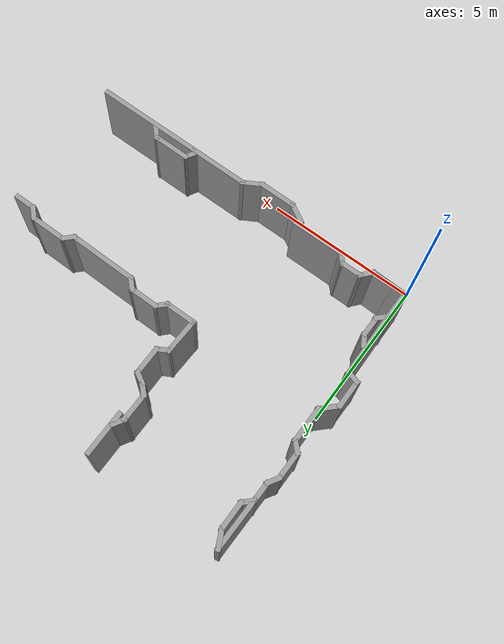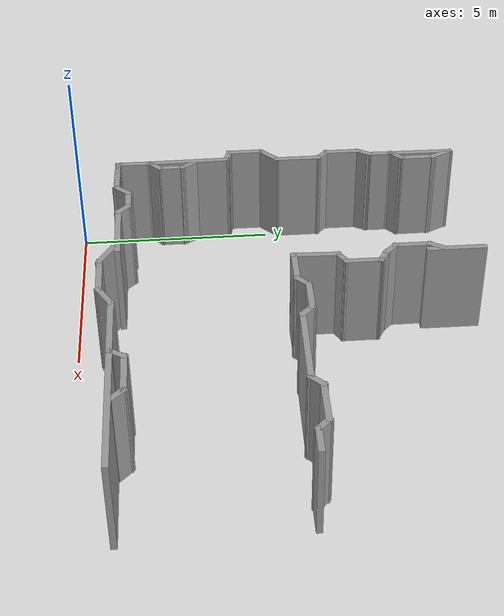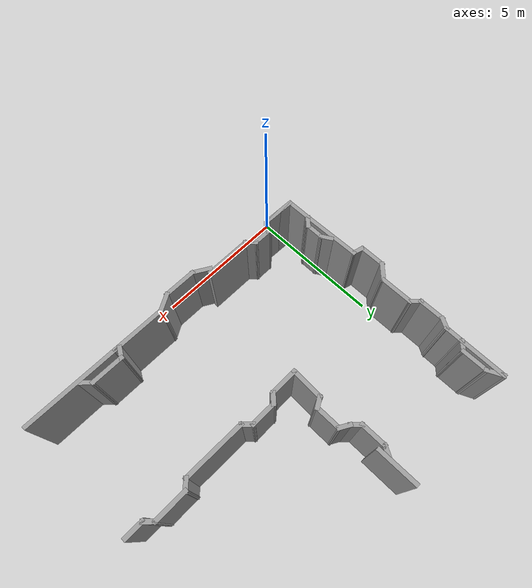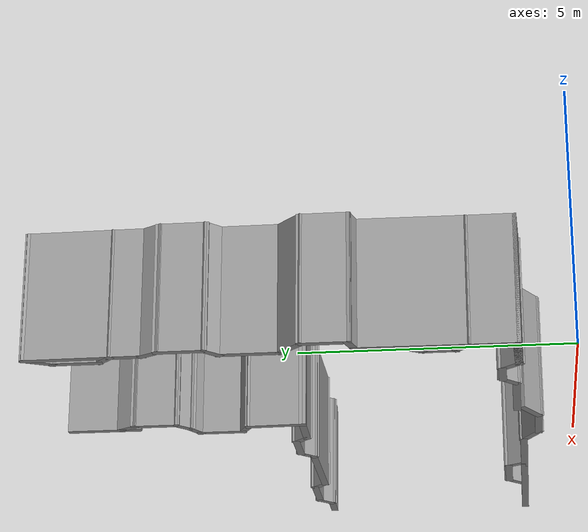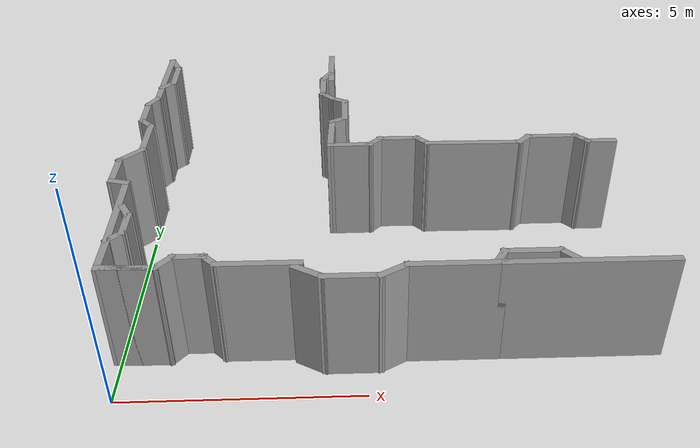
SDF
<?xml version='1.0'?>
<sdf version='1.6'>
  <model name='hallway_corner'>
    <pose frame=''>5.24091 5.37583 0 0 -0 0</pose>
    <link name='Wall_19'>
      <collision name='Wall_19_Collision'>
        <geometry>
          <box>
            <size>1.5 0.15 2.5</size>
          </box>
        </geometry>
        <pose frame=''>0 0 1.25 0 -0 0</pose>
      </collision>
      <visual name='Wall_19_Visual'>
        <pose frame=''>0 0 1.25 0 -0 0</pose>
        <geometry>
          <box>
            <size>1.5 0.15 2.5</size>
          </box>
        </geometry>
        <material>
          <script>
            <uri>file://media/materials/scripts/gazebo.material</uri>
            <name>Gazebo/Grey</name>
          </script>
          <ambient>1 1 1 1</ambient>
        </material>
      </visual>
      <pose frame=''>-0.975739 4.04516 0 0 -0 1.5708</pose>
    </link>
    <link name='Wall_21'>
      <collision name='Wall_21_Collision'>
        <geometry>
          <box>
            <size>0.5 0.15 2.5</size>
          </box>
        </geometry>
        <pose frame=''>0 0 1.25 0 -0 0</pose>
      </collision>
      <visual name='Wall_21_Visual'>
        <pose frame=''>0 0 1.25 0 -0 0</pose>
        <geometry>
          <box>
            <size>0.5 0.15 2.5</size>
          </box>
        </geometry>
        <material>
          <script>
            <uri>file://media/materials/scripts/gazebo.material</uri>
            <name>Gazebo/Grey</name>
          </script>
          <ambient>1 1 1 1</ambient>
        </material>
      </visual>
      <pose frame=''>0.06558 0.153302 0 0 -0 0.785398</pose>
    </link>
    <link name='Wall_22'>
      <collision name='Wall_22_Collision'>
        <geometry>
          <box>
            <size>1 0.15 2.5</size>
          </box>
        </geometry>
        <pose frame=''>0 0 1.25 0 -0 0</pose>
      </collision>
      <visual name='Wall_22_Visual'>
        <pose frame=''>0 0 1.25 0 -0 0</pose>
        <geometry>
          <box>
            <size>1 0.15 2.5</size>
          </box>
        </geometry>
        <material>
          <script>
            <uri>file://media/materials/scripts/gazebo.material</uri>
            <name>Gazebo/Grey</name>
          </script>
          <ambient>1 1 1 1</ambient>
        </material>
      </visual>
      <pose frame=''>0.614324 0.277046 0 0 -0 0</pose>
    </link>
    <link name='Wall_23'>
      <collision name='Wall_23_Collision'>
        <geometry>
          <box>
            <size>0.5 0.15 2.5</size>
          </box>
        </geometry>
        <pose frame=''>0 0 1.25 0 -0 0</pose>
      </collision>
      <visual name='Wall_23_Visual'>
        <pose frame=''>0 0 1.25 0 -0 0</pose>
        <geometry>
          <box>
            <size>0.5 0.15 2.5</size>
          </box>
        </geometry>
        <material>
          <script>
            <uri>file://media/materials/scripts/gazebo.material</uri>
            <name>Gazebo/Grey</name>
          </script>
          <ambient>1 1 1 1</ambient>
        </material>
      </visual>
      <pose frame=''>1.16307 0.153302 0 0 0 -0.785398</pose>
    </link>
    <link name='Wall_25'>
      <collision name='Wall_25_Collision'>
        <geometry>
          <box>
            <size>0.5 0.15 2.5</size>
          </box>
        </geometry>
        <pose frame=''>0 0 1.25 0 -0 0</pose>
      </collision>
      <visual name='Wall_25_Visual'>
        <pose frame=''>0 0 1.25 0 -0 0</pose>
        <geometry>
          <box>
            <size>0.5 0.15 2.5</size>
          </box>
        </geometry>
        <material>
          <script>
            <uri>file://media/materials/scripts/gazebo.material</uri>
            <name>Gazebo/Grey</name>
          </script>
          <ambient>1 1 1 1</ambient>
        </material>
      </visual>
      <pose frame=''>3.5461 0.135812 0 0 -0 0.785398</pose>
    </link>
    <link name='Wall_26'>
      <collision name='Wall_26_Collision'>
        <geometry>
          <box>
            <size>1.25 0.15 2.5</size>
          </box>
        </geometry>
        <pose frame=''>0 0 1.25 0 -0 0</pose>
      </collision>
      <visual name='Wall_26_Visual'>
        <pose frame=''>0 0 1.25 0 -0 0</pose>
        <geometry>
          <box>
            <size>1.25 0.15 2.5</size>
          </box>
        </geometry>
        <material>
          <script>
            <uri>file://media/materials/scripts/gazebo.material</uri>
            <name>Gazebo/Grey</name>
          </script>
          <ambient>1 1 1 1</ambient>
        </material>
      </visual>
      <pose frame=''>4.21985 0.259556 0 0 -0 0</pose>
    </link>
    <link name='Wall_28'>
      <collision name='Wall_28_Collision'>
        <geometry>
          <box>
            <size>0.5 0.15 2.5</size>
          </box>
        </geometry>
        <pose frame=''>0 0 1.25 0 -0 0</pose>
      </collision>
      <visual name='Wall_28_Visual'>
        <pose frame=''>0 0 1.25 0 -0 0</pose>
        <geometry>
          <box>
            <size>0.5 0.15 2.5</size>
          </box>
        </geometry>
        <material>
          <script>
            <uri>file://media/materials/scripts/gazebo.material</uri>
            <name>Gazebo/Grey</name>
          </script>
          <ambient>1 1 1 1</ambient>
        </material>
      </visual>
      <pose frame=''>4.89359 0.135812 0 0 0 -0.785398</pose>
    </link>
    <link name='Wall_30'>
      <collision name='Wall_30_Collision'>
        <geometry>
          <box>
            <size>1.06762 0.15 2.5</size>
          </box>
        </geometry>
        <pose frame=''>0 0 1.25 0 -0 0</pose>
      </collision>
      <visual name='Wall_30_Visual'>
        <pose frame=''>0 0 1.25 0 -0 0</pose>
        <geometry>
          <box>
            <size>1.06762 0.15 2.5</size>
          </box>
        </geometry>
        <material>
          <script>
            <uri>file://media/materials/scripts/gazebo.material</uri>
            <name>Gazebo/Grey</name>
          </script>
          <ambient>1 1 1 1</ambient>
        </material>
      </visual>
      <pose frame=''>-0.516951 0.024859 0 0 -0 0.010242</pose>
    </link>
    <link name='Wall_32'>
      <collision name='Wall_32_Collision'>
        <geometry>
          <box>
            <size>2.28562 0.15 2.5</size>
          </box>
        </geometry>
        <pose frame=''>0 0 1.25 0 -0 0</pose>
      </collision>
      <visual name='Wall_32_Visual'>
        <pose frame=''>0 0 1.25 0 -0 0</pose>
        <geometry>
          <box>
            <size>2.28562 0.15 2.5</size>
          </box>
        </geometry>
        <material>
          <script>
            <uri>file://media/materials/scripts/gazebo.material</uri>
            <name>Gazebo/Grey</name>
          </script>
          <ambient>1 1 1 1</ambient>
        </material>
      </visual>
      <pose frame=''>2.35459 0.020813 0 0 0 -0.00819</pose>
    </link>
    <link name='Wall_34'>
      <collision name='Wall_34_Collision'>
        <geometry>
          <box>
            <size>0.75 0.15 2.5</size>
          </box>
        </geometry>
        <pose frame=''>0 0 1.25 0 -0 0</pose>
      </collision>
      <visual name='Wall_34_Visual'>
        <pose frame=''>0 0 1.25 0 -0 0</pose>
        <geometry>
          <box>
            <size>0.75 0.15 2.5</size>
          </box>
        </geometry>
        <material>
          <script>
            <uri>file://media/materials/scripts/gazebo.material</uri>
            <name>Gazebo/Grey</name>
          </script>
          <ambient>1 1 1 1</ambient>
        </material>
      </visual>
      <pose frame=''>5.31733 0.012068 0 0 -0 0</pose>
    </link>
    <link name='Wall_43'>
      <collision name='Wall_43_Collision'>
        <geometry>
          <box>
            <size>1.24368 0.15 2.5</size>
          </box>
        </geometry>
        <pose frame=''>0 0 1.25 0 -0 0</pose>
      </collision>
      <visual name='Wall_43_Visual'>
        <pose frame=''>0 0 1.25 0 -0 0</pose>
        <geometry>
          <box>
            <size>1.24368 0.15 2.5</size>
          </box>
        </geometry>
        <material>
          <script>
            <uri>file://media/materials/scripts/gazebo.material</uri>
            <name>Gazebo/Grey</name>
          </script>
          <ambient>1 1 1 1</ambient>
        </material>
      </visual>
      <pose frame=''>-4.77933 -4.32406 0 0 0 -0.025378</pose>
    </link>
    <link name='Wall_45'>
      <collision name='Wall_45_Collision'>
        <geometry>
          <box>
            <size>1.73495 0.15 2.5</size>
          </box>
        </geometry>
        <pose frame=''>0 0 1.25 0 -0 0</pose>
      </collision>
      <visual name='Wall_45_Visual'>
        <pose frame=''>0 0 1.25 0 -0 0</pose>
        <geometry>
          <box>
            <size>1.73495 0.15 2.5</size>
          </box>
        </geometry>
        <material>
          <script>
            <uri>file://media/materials/scripts/gazebo.material</uri>
            <name>Gazebo/Grey</name>
          </script>
          <ambient>1 1 1 1</ambient>
        </material>
      </visual>
      <pose frame=''>-5.33355 3.84738 0 0 -0 1.56126</pose>
    </link>
    <link name='Wall_47'>
      <collision name='Wall_47_Collision'>
        <geometry>
          <box>
            <size>0.5 0.15 2.5</size>
          </box>
        </geometry>
        <pose frame=''>0 0 1.25 0 -0 0</pose>
      </collision>
      <visual name='Wall_47_Visual'>
        <pose frame=''>0 0 1.25 0 -0 0</pose>
        <geometry>
          <box>
            <size>0.5 0.15 2.5</size>
          </box>
        </geometry>
        <material>
          <script>
            <uri>file://media/materials/scripts/gazebo.material</uri>
            <name>Gazebo/Grey</name>
          </script>
          <ambient>1 1 1 1</ambient>
        </material>
      </visual>
      <pose frame=''>3.64737 -4.17853 0 0 -0 2.35619</pose>
    </link>
    <link name='Wall_48'>
      <collision name='Wall_48_Collision'>
        <geometry>
          <box>
            <size>1.25 0.15 2.5</size>
          </box>
        </geometry>
        <pose frame=''>0 0 1.25 0 -0 0</pose>
      </collision>
      <visual name='Wall_48_Visual'>
        <pose frame=''>0 0 1.25 0 -0 0</pose>
        <geometry>
          <box>
            <size>1.25 0.15 2.5</size>
          </box>
        </geometry>
        <material>
          <script>
            <uri>file://media/materials/scripts/gazebo.material</uri>
            <name>Gazebo/Grey</name>
          </script>
          <ambient>1 1 1 1</ambient>
        </material>
      </visual>
      <pose frame=''>2.97363 -4.05479 0 0 -0 3.14159</pose>
    </link>
    <link name='Wall_49'>
      <collision name='Wall_49_Collision'>
        <geometry>
          <box>
            <size>0.5 0.15 2.5</size>
          </box>
        </geometry>
        <pose frame=''>0 0 1.25 0 -0 0</pose>
      </collision>
      <visual name='Wall_49_Visual'>
        <pose frame=''>0 0 1.25 0 -0 0</pose>
        <geometry>
          <box>
            <size>0.5 0.15 2.5</size>
          </box>
        </geometry>
        <material>
          <script>
            <uri>file://media/materials/scripts/gazebo.material</uri>
            <name>Gazebo/Grey</name>
          </script>
          <ambient>1 1 1 1</ambient>
        </material>
      </visual>
      <pose frame=''>2.33613 -4.20634 0 0 0 -2.0944</pose>
    </link>
    <link name='Wall_51'>
      <collision name='Wall_51_Collision'>
        <geometry>
          <box>
            <size>0.75 0.15 2.5</size>
          </box>
        </geometry>
        <pose frame=''>0 0 1.25 0 -0 0</pose>
      </collision>
      <visual name='Wall_51_Visual'>
        <pose frame=''>0 0 1.25 0 -0 0</pose>
        <geometry>
          <box>
            <size>0.75 0.15 2.5</size>
          </box>
        </geometry>
        <material>
          <script>
            <uri>file://media/materials/scripts/gazebo.material</uri>
            <name>Gazebo/Grey</name>
          </script>
          <ambient>1 1 1 1</ambient>
        </material>
      </visual>
      <pose frame=''>0.272458 -4.54271 0 0 0 -2.61799</pose>
    </link>
    <link name='Wall_52'>
      <collision name='Wall_52_Collision'>
        <geometry>
          <box>
            <size>1.25 0.15 2.5</size>
          </box>
        </geometry>
        <pose frame=''>0 0 1.25 0 -0 0</pose>
      </collision>
      <visual name='Wall_52_Visual'>
        <pose frame=''>0 0 1.25 0 -0 0</pose>
        <geometry>
          <box>
            <size>1.25 0.15 2.5</size>
          </box>
        </geometry>
        <material>
          <script>
            <uri>file://media/materials/scripts/gazebo.material</uri>
            <name>Gazebo/Grey</name>
          </script>
          <ambient>1 1 1 1</ambient>
        </material>
      </visual>
      <pose frame=''>-0.537349 -4.69271 0 0 -0 3.14159</pose>
    </link>
    <link name='Wall_53'>
      <collision name='Wall_53_Collision'>
        <geometry>
          <box>
            <size>0.75 0.15 2.5</size>
          </box>
        </geometry>
        <pose frame=''>0 0 1.25 0 -0 0</pose>
      </collision>
      <visual name='Wall_53_Visual'>
        <pose frame=''>0 0 1.25 0 -0 0</pose>
        <geometry>
          <box>
            <size>0.75 0.15 2.5</size>
          </box>
        </geometry>
        <material>
          <script>
            <uri>file://media/materials/scripts/gazebo.material</uri>
            <name>Gazebo/Grey</name>
          </script>
          <ambient>1 1 1 1</ambient>
        </material>
      </visual>
      <pose frame=''>-1.34716 -4.54271 0 0 -0 2.61799</pose>
    </link>
    <link name='Wall_55'>
      <collision name='Wall_55_Collision'>
        <geometry>
          <box>
            <size>0.5 0.15 2.5</size>
          </box>
        </geometry>
        <pose frame=''>0 0 1.25 0 -0 0</pose>
      </collision>
      <visual name='Wall_55_Visual'>
        <pose frame=''>0 0 1.25 0 -0 0</pose>
        <geometry>
          <box>
            <size>0.5 0.15 2.5</size>
          </box>
        </geometry>
        <material>
          <script>
            <uri>file://media/materials/scripts/gazebo.material</uri>
            <name>Gazebo/Grey</name>
          </script>
          <ambient>1 1 1 1</ambient>
        </material>
      </visual>
      <pose frame=''>-3.24148 -4.14896 0 0 -0 2.35619</pose>
    </link>
    <link name='Wall_56'>
      <collision name='Wall_56_Collision'>
        <geometry>
          <box>
            <size>0.75 0.15 2.5</size>
          </box>
        </geometry>
        <pose frame=''>0 0 1.25 0 -0 0</pose>
      </collision>
      <visual name='Wall_56_Visual'>
        <pose frame=''>0 0 1.25 0 -0 0</pose>
        <geometry>
          <box>
            <size>0.75 0.15 2.5</size>
          </box>
        </geometry>
        <material>
          <script>
            <uri>file://media/materials/scripts/gazebo.material</uri>
            <name>Gazebo/Grey</name>
          </script>
          <ambient>1 1 1 1</ambient>
        </material>
      </visual>
      <pose frame=''>-3.66522 -4.02522 0 0 -0 3.14159</pose>
    </link>
    <link name='Wall_57'>
      <collision name='Wall_57_Collision'>
        <geometry>
          <box>
            <size>0.561479 0.15 2.5</size>
          </box>
        </geometry>
        <pose frame=''>0 0 1.25 0 -0 0</pose>
      </collision>
      <visual name='Wall_57_Visual'>
        <pose frame=''>0 0 1.25 0 -0 0</pose>
        <geometry>
          <box>
            <size>0.561479 0.15 2.5</size>
          </box>
        </geometry>
        <material>
          <script>
            <uri>file://media/materials/scripts/gazebo.material</uri>
            <name>Gazebo/Grey</name>
          </script>
          <ambient>1 1 1 1</ambient>
        </material>
      </visual>
      <pose frame=''>-4.09894 -4.18158 0 0 0 -2.27833</pose>
    </link>
    <link name='Wall_58'>
      <collision name='Wall_58_Collision'>
        <geometry>
          <box>
            <size>1.24368 0.15 2.5</size>
          </box>
        </geometry>
        <pose frame=''>0 0 1.25 0 -0 0</pose>
      </collision>
      <visual name='Wall_58_Visual'>
        <pose frame=''>0 0 1.25 0 -0 0</pose>
        <geometry>
          <box>
            <size>1.24368 0.15 2.5</size>
          </box>
        </geometry>
        <material>
          <script>
            <uri>file://media/materials/scripts/gazebo.material</uri>
            <name>Gazebo/Grey</name>
          </script>
          <ambient>1 1 1 1</ambient>
        </material>
      </visual>
      <pose frame=''>-4.77933 -4.32406 0 0 -0 3.11621</pose>
    </link>
    <link name='Wall_59'>
      <collision name='Wall_59_Collision'>
        <geometry>
          <box>
            <size>1 0.15 2.5</size>
          </box>
        </geometry>
        <pose frame=''>0 0 1.25 0 -0 0</pose>
      </collision>
      <visual name='Wall_59_Visual'>
        <pose frame=''>0 0 1.25 0 -0 0</pose>
        <geometry>
          <box>
            <size>1 0.15 2.5</size>
          </box>
        </geometry>
        <material>
          <script>
            <uri>file://media/materials/scripts/gazebo.material</uri>
            <name>Gazebo/Grey</name>
          </script>
          <ambient>1 1 1 1</ambient>
        </material>
      </visual>
      <pose frame=''>-5.32599 -3.88518 0 0 -0 1.5708</pose>
    </link>
    <link name='Wall_60'>
      <collision name='Wall_60_Collision'>
        <geometry>
          <box>
            <size>0.5 0.15 2.5</size>
          </box>
        </geometry>
        <pose frame=''>0 0 1.25 0 -0 0</pose>
      </collision>
      <visual name='Wall_60_Visual'>
        <pose frame=''>0 0 1.25 0 -0 0</pose>
        <geometry>
          <box>
            <size>0.5 0.15 2.5</size>
          </box>
        </geometry>
        <material>
          <script>
            <uri>file://media/materials/scripts/gazebo.material</uri>
            <name>Gazebo/Grey</name>
          </script>
          <ambient>1 1 1 1</ambient>
        </material>
      </visual>
      <pose frame=''>-5.20225 -3.33644 0 0 -0 0.785398</pose>
    </link>
    <link name='Wall_61'>
      <collision name='Wall_61_Collision'>
        <geometry>
          <box>
            <size>0.75 0.15 2.5</size>
          </box>
        </geometry>
        <pose frame=''>0 0 1.25 0 -0 0</pose>
      </collision>
      <visual name='Wall_61_Visual'>
        <pose frame=''>0 0 1.25 0 -0 0</pose>
        <geometry>
          <box>
            <size>0.75 0.15 2.5</size>
          </box>
        </geometry>
        <material>
          <script>
            <uri>file://media/materials/scripts/gazebo.material</uri>
            <name>Gazebo/Grey</name>
          </script>
          <ambient>1 1 1 1</ambient>
        </material>
      </visual>
      <pose frame=''>-5.0785 -2.91269 0 0 -0 1.5708</pose>
    </link>
    <link name='Wall_62'>
      <collision name='Wall_62_Collision'>
        <geometry>
          <box>
            <size>0.5 0.15 2.5</size>
          </box>
        </geometry>
        <pose frame=''>0 0 1.25 0 -0 0</pose>
      </collision>
      <visual name='Wall_62_Visual'>
        <pose frame=''>0 0 1.25 0 -0 0</pose>
        <geometry>
          <box>
            <size>0.5 0.15 2.5</size>
          </box>
        </geometry>
        <material>
          <script>
            <uri>file://media/materials/scripts/gazebo.material</uri>
            <name>Gazebo/Grey</name>
          </script>
          <ambient>1 1 1 1</ambient>
        </material>
      </visual>
      <pose frame=''>-5.166 -2.46114 0 0 -0 2.0944</pose>
    </link>
    <link name='Wall_64'>
      <collision name='Wall_64_Collision'>
        <geometry>
          <box>
            <size>0.5 0.15 2.5</size>
          </box>
        </geometry>
        <pose frame=''>0 0 1.25 0 -0 0</pose>
      </collision>
      <visual name='Wall_64_Visual'>
        <pose frame=''>0 0 1.25 0 -0 0</pose>
        <geometry>
          <box>
            <size>0.5 0.15 2.5</size>
          </box>
        </geometry>
        <material>
          <script>
            <uri>file://media/materials/scripts/gazebo.material</uri>
            <name>Gazebo/Grey</name>
          </script>
          <ambient>1 1 1 1</ambient>
        </material>
      </visual>
      <pose frame=''>-5.53216 -1.36405 0 0 -0 2.87979</pose>
    </link>
    <link name='Wall_65'>
      <collision name='Wall_65_Collision'>
        <geometry>
          <box>
            <size>1 0.15 2.5</size>
          </box>
        </geometry>
        <pose frame=''>0 0 1.25 0 -0 0</pose>
      </collision>
      <visual name='Wall_65_Visual'>
        <pose frame=''>0 0 1.25 0 -0 0</pose>
        <geometry>
          <box>
            <size>1 0.15 2.5</size>
          </box>
        </geometry>
        <material>
          <script>
            <uri>file://media/materials/scripts/gazebo.material</uri>
            <name>Gazebo/Grey</name>
          </script>
          <ambient>1 1 1 1</ambient>
        </material>
      </visual>
      <pose frame=''>-5.7012 -0.893755 0 0 -0 1.5708</pose>
    </link>
    <link name='Wall_66'>
      <collision name='Wall_66_Collision'>
        <geometry>
          <box>
            <size>0.75 0.15 2.5</size>
          </box>
        </geometry>
        <pose frame=''>0 0 1.25 0 -0 0</pose>
      </collision>
      <visual name='Wall_66_Visual'>
        <pose frame=''>0 0 1.25 0 -0 0</pose>
        <geometry>
          <box>
            <size>0.75 0.15 2.5</size>
          </box>
        </geometry>
        <material>
          <script>
            <uri>file://media/materials/scripts/gazebo.material</uri>
            <name>Gazebo/Grey</name>
          </script>
          <ambient>1 1 1 1</ambient>
        </material>
      </visual>
      <pose frame=''>-5.48907 -0.256623 0 0 -0 0.785398</pose>
    </link>
    <link name='Wall_68'>
      <collision name='Wall_68_Collision'>
        <geometry>
          <box>
            <size>0.5 0.15 2.5</size>
          </box>
        </geometry>
        <pose frame=''>0 0 1.25 0 -0 0</pose>
      </collision>
      <visual name='Wall_68_Visual'>
        <pose frame=''>0 0 1.25 0 -0 0</pose>
        <geometry>
          <box>
            <size>0.5 0.15 2.5</size>
          </box>
        </geometry>
        <material>
          <script>
            <uri>file://media/materials/scripts/gazebo.material</uri>
            <name>Gazebo/Grey</name>
          </script>
          <ambient>1 1 1 1</ambient>
        </material>
      </visual>
      <pose frame=''>-5.40068 1.17925 0 0 -0 2.35619</pose>
    </link>
    <link name='Wall_69'>
      <collision name='Wall_69_Collision'>
        <geometry>
          <box>
            <size>1 0.15 2.5</size>
          </box>
        </geometry>
        <pose frame=''>0 0 1.25 0 -0 0</pose>
      </collision>
      <visual name='Wall_69_Visual'>
        <pose frame=''>0 0 1.25 0 -0 0</pose>
        <geometry>
          <box>
            <size>1 0.15 2.5</size>
          </box>
        </geometry>
        <material>
          <script>
            <uri>file://media/materials/scripts/gazebo.material</uri>
            <name>Gazebo/Grey</name>
          </script>
          <ambient>1 1 1 1</ambient>
        </material>
      </visual>
      <pose frame=''>-5.52442 1.728 0 0 -0 1.5708</pose>
    </link>
    <link name='Wall_70'>
      <collision name='Wall_70_Collision'>
        <geometry>
          <box>
            <size>0.5 0.15 2.5</size>
          </box>
        </geometry>
        <pose frame=''>0 0 1.25 0 -0 0</pose>
      </collision>
      <visual name='Wall_70_Visual'>
        <pose frame=''>0 0 1.25 0 -0 0</pose>
        <geometry>
          <box>
            <size>0.5 0.15 2.5</size>
          </box>
        </geometry>
        <material>
          <script>
            <uri>file://media/materials/scripts/gazebo.material</uri>
            <name>Gazebo/Grey</name>
          </script>
          <ambient>1 1 1 1</ambient>
        </material>
      </visual>
      <pose frame=''>-5.43692 2.30455 0 0 -0 1.0472</pose>
    </link>
    <link name='Wall_72'>
      <collision name='Wall_72_Collision'>
        <geometry>
          <box>
            <size>0.5 0.15 2.5</size>
          </box>
        </geometry>
        <pose frame=''>0 0 1.25 0 -0 0</pose>
      </collision>
      <visual name='Wall_72_Visual'>
        <pose frame=''>0 0 1.25 0 -0 0</pose>
        <geometry>
          <box>
            <size>0.5 0.15 2.5</size>
          </box>
        </geometry>
        <material>
          <script>
            <uri>file://media/materials/scripts/gazebo.material</uri>
            <name>Gazebo/Grey</name>
          </script>
          <ambient>1 1 1 1</ambient>
        </material>
      </visual>
      <pose frame=''>-0.786586 1.19236 0 0 -0 0.523599</pose>
    </link>
    <link name='Wall_73'>
      <collision name='Wall_73_Collision'>
        <geometry>
          <box>
            <size>1 0.15 2.5</size>
          </box>
        </geometry>
        <pose frame=''>0 0 1.25 0 -0 0</pose>
      </collision>
      <visual name='Wall_73_Visual'>
        <pose frame=''>0 0 1.25 0 -0 0</pose>
        <geometry>
          <box>
            <size>1 0.15 2.5</size>
          </box>
        </geometry>
        <material>
          <script>
            <uri>file://media/materials/scripts/gazebo.material</uri>
            <name>Gazebo/Grey</name>
          </script>
          <ambient>1 1 1 1</ambient>
        </material>
      </visual>
      <pose frame=''>-0.635031 1.70486 0 0 -0 1.5708</pose>
    </link>
    <link name='Wall_74'>
      <collision name='Wall_74_Collision'>
        <geometry>
          <box>
            <size>0.5 0.15 2.5</size>
          </box>
        </geometry>
        <pose frame=''>0 0 1.25 0 -0 0</pose>
      </collision>
      <visual name='Wall_74_Visual'>
        <pose frame=''>0 0 1.25 0 -0 0</pose>
        <geometry>
          <box>
            <size>0.5 0.15 2.5</size>
          </box>
        </geometry>
        <material>
          <script>
            <uri>file://media/materials/scripts/gazebo.material</uri>
            <name>Gazebo/Grey</name>
          </script>
          <ambient>1 1 1 1</ambient>
        </material>
      </visual>
      <pose frame=''>-0.786586 2.21735 0 0 -0 2.61799</pose>
    </link>
    <link name='Wall_75'>
      <collision name='Wall_75_Collision'>
        <geometry>
          <box>
            <size>0.5 0.15 2.5</size>
          </box>
        </geometry>
        <pose frame=''>0 0 1.25 0 -0 0</pose>
      </collision>
      <visual name='Wall_75_Visual'>
        <pose frame=''>0 0 1.25 0 -0 0</pose>
        <geometry>
          <box>
            <size>0.5 0.15 2.5</size>
          </box>
        </geometry>
        <material>
          <script>
            <uri>file://media/materials/scripts/gazebo.material</uri>
            <name>Gazebo/Grey</name>
          </script>
          <ambient>1 1 1 1</ambient>
        </material>
      </visual>
      <pose frame=''>-1.06188 2.4286 0 0 -0 2.35619</pose>
    </link>
    <link name='Wall_76'>
      <collision name='Wall_76_Collision'>
        <geometry>
          <box>
            <size>1 0.15 2.5</size>
          </box>
        </geometry>
        <pose frame=''>0 0 1.25 0 -0 0</pose>
      </collision>
      <visual name='Wall_76_Visual'>
        <pose frame=''>0 0 1.25 0 -0 0</pose>
        <geometry>
          <box>
            <size>1 0.15 2.5</size>
          </box>
        </geometry>
        <material>
          <script>
            <uri>file://media/materials/scripts/gazebo.material</uri>
            <name>Gazebo/Grey</name>
          </script>
          <ambient>1 1 1 1</ambient>
        </material>
      </visual>
      <pose frame=''>-1.18563 2.97734 0 0 -0 1.5708</pose>
    </link>
    <link name='Wall_77'>
      <collision name='Wall_77_Collision'>
        <geometry>
          <box>
            <size>0.5 0.15 2.5</size>
          </box>
        </geometry>
        <pose frame=''>0 0 1.25 0 -0 0</pose>
      </collision>
      <visual name='Wall_77_Visual'>
        <pose frame=''>0 0 1.25 0 -0 0</pose>
        <geometry>
          <box>
            <size>0.5 0.15 2.5</size>
          </box>
        </geometry>
        <material>
          <script>
            <uri>file://media/materials/scripts/gazebo.material</uri>
            <name>Gazebo/Grey</name>
          </script>
          <ambient>1 1 1 1</ambient>
        </material>
      </visual>
      <pose frame=''>-1.09813 3.5539 0 0 -0 1.0472</pose>
    </link>
    <link name='Wall_81'>
      <collision name='Wall_81_Collision'>
        <geometry>
          <box>
            <size>0.5 0.15 2.5</size>
          </box>
        </geometry>
        <pose frame=''>0 0 1.25 0 -0 0</pose>
      </collision>
      <visual name='Wall_81_Visual'>
        <pose frame=''>0 0 1.25 0 -0 0</pose>
        <geometry>
          <box>
            <size>0.5 0.15 2.5</size>
          </box>
        </geometry>
        <material>
          <script>
            <uri>file://media/materials/scripts/gazebo.material</uri>
            <name>Gazebo/Grey</name>
          </script>
          <ambient>1 1 1 1</ambient>
        </material>
      </visual>
      <pose frame=''>-5.21737 3.17869 0 0 -0 0.785398</pose>
    </link>
    <link name='Wall_82'>
      <collision name='Wall_82_Collision'>
        <geometry>
          <box>
            <size>1 0.15 2.5</size>
          </box>
        </geometry>
        <pose frame=''>0 0 1.25 0 -0 0</pose>
      </collision>
      <visual name='Wall_82_Visual'>
        <pose frame=''>0 0 1.25 0 -0 0</pose>
        <geometry>
          <box>
            <size>1 0.15 2.5</size>
          </box>
        </geometry>
        <material>
          <script>
            <uri>file://media/materials/scripts/gazebo.material</uri>
            <name>Gazebo/Grey</name>
          </script>
          <ambient>1 1 1 1</ambient>
        </material>
      </visual>
      <pose frame=''>-5.09363 3.72743 0 0 -0 1.5708</pose>
    </link>
    <link name='Wall_83'>
      <collision name='Wall_83_Collision'>
        <geometry>
          <box>
            <size>0.689946 0.15 2.5</size>
          </box>
        </geometry>
        <pose frame=''>0 0 1.25 0 -0 0</pose>
      </collision>
      <visual name='Wall_83_Visual'>
        <pose frame=''>0 0 1.25 0 -0 0</pose>
        <geometry>
          <box>
            <size>0.689946 0.15 2.5</size>
          </box>
        </geometry>
        <material>
          <script>
            <uri>file://media/materials/scripts/gazebo.material</uri>
            <name>Gazebo/Grey</name>
          </script>
          <ambient>1 1 1 1</ambient>
        </material>
      </visual>
      <pose frame=''>-5.20981 4.39612 0 0 -0 2.01567</pose>
    </link>
    <link name='Wall_85'>
      <collision name='Wall_85_Collision'>
        <geometry>
          <box>
            <size>2.20118 0.15 2.5</size>
          </box>
        </geometry>
        <pose frame=''>0 0 1.25 0 -0 0</pose>
      </collision>
      <visual name='Wall_85_Visual'>
        <pose frame=''>0 0 1.25 0 -0 0</pose>
        <geometry>
          <box>
            <size>2.20118 0.15 2.5</size>
          </box>
        </geometry>
        <material>
          <script>
            <uri>file://media/materials/scripts/gazebo.material</uri>
            <name>Gazebo/Grey</name>
          </script>
          <ambient>1 1 1 1</ambient>
        </material>
      </visual>
      <pose frame=''>-5.34456 -2.43476 0 0 -0 1.5889</pose>
    </link>
    <link name='Wall_87'>
      <collision name='Wall_87_Collision'>
        <geometry>
          <box>
            <size>1.25 0.15 2.5</size>
          </box>
        </geometry>
        <pose frame=''>0 0 1.25 0 -0 0</pose>
      </collision>
      <visual name='Wall_87_Visual'>
        <pose frame=''>0 0 1.25 0 -0 0</pose>
        <geometry>
          <box>
            <size>1.25 0.15 2.5</size>
          </box>
        </geometry>
        <material>
          <script>
            <uri>file://media/materials/scripts/gazebo.material</uri>
            <name>Gazebo/Grey</name>
          </script>
          <ambient>1 1 1 1</ambient>
        </material>
      </visual>
      <pose frame=''>-5.27694 0.505509 0 0 -0 1.5708</pose>
    </link>
    <link name='Wall_89'>
      <collision name='Wall_89_Collision'>
        <geometry>
          <box>
            <size>0.748895 0.15 2.5</size>
          </box>
        </geometry>
        <pose frame=''>0 0 1.25 0 -0 0</pose>
      </collision>
      <visual name='Wall_89_Visual'>
        <pose frame=''>0 0 1.25 0 -0 0</pose>
        <geometry>
          <box>
            <size>0.748895 0.15 2.5</size>
          </box>
        </geometry>
        <material>
          <script>
            <uri>file://media/materials/scripts/gazebo.material</uri>
            <name>Gazebo/Grey</name>
          </script>
          <ambient>1 1 1 1</ambient>
        </material>
      </visual>
      <pose frame=''>-5.34527 2.75552 0 0 0 -1.58467</pose>
    </link>
    <link name='Wall_91'>
      <collision name='Wall_91_Collision'>
        <geometry>
          <box>
            <size>1.23535 0.15 2.5</size>
          </box>
        </geometry>
        <pose frame=''>0 0 1.25 0 -0 0</pose>
      </collision>
      <visual name='Wall_91_Visual'>
        <pose frame=''>0 0 1.25 0 -0 0</pose>
        <geometry>
          <box>
            <size>1.23535 0.15 2.5</size>
          </box>
        </geometry>
        <material>
          <script>
            <uri>file://media/materials/scripts/gazebo.material</uri>
            <name>Gazebo/Grey</name>
          </script>
          <ambient>1 1 1 1</ambient>
        </material>
      </visual>
      <pose frame=''>-0.956939 0.562508 0 0 0 -1.60545</pose>
    </link>
    <link name='Wall_93'>
      <collision name='Wall_93_Collision'>
        <geometry>
          <box>
            <size>1.75 0.15 2.5</size>
          </box>
        </geometry>
        <pose frame=''>0 0 1.25 0 -0 0</pose>
      </collision>
      <visual name='Wall_93_Visual'>
        <pose frame=''>0 0 1.25 0 -0 0</pose>
        <geometry>
          <box>
            <size>1.75 0.15 2.5</size>
          </box>
        </geometry>
        <material>
          <script>
            <uri>file://media/materials/scripts/gazebo.material</uri>
            <name>Gazebo/Grey</name>
          </script>
          <ambient>1 1 1 1</ambient>
        </material>
      </visual>
      <pose frame=''>-2.31773 -4.27271 0 0 -0 0</pose>
    </link>
    <link name='Wall_95'>
      <collision name='Wall_95_Collision'>
        <geometry>
          <box>
            <size>2 0.15 2.5</size>
          </box>
        </geometry>
        <pose frame=''>0 0 1.25 0 -0 0</pose>
      </collision>
      <visual name='Wall_95_Visual'>
        <pose frame=''>0 0 1.25 0 -0 0</pose>
        <geometry>
          <box>
            <size>2 0.15 2.5</size>
          </box>
        </geometry>
        <material>
          <script>
            <uri>file://media/materials/scripts/gazebo.material</uri>
            <name>Gazebo/Grey</name>
          </script>
          <ambient>1 1 1 1</ambient>
        </material>
      </visual>
      <pose frame=''>1.45727 -4.39271 0 0 -0 0</pose>
    </link>
    <link name='Wall_96'>
      <collision name='Wall_96_Collision'>
        <geometry>
          <box>
            <size>3.5 0.15 2.5</size>
          </box>
        </geometry>
        <pose frame=''>0 0 1.25 0 -0 0</pose>
      </collision>
      <visual name='Wall_96_Visual'>
        <pose frame=''>0 0 1.25 0 -0 0</pose>
        <geometry>
          <box>
            <size>3.5 0.15 2.5</size>
          </box>
        </geometry>
        <material>
          <script>
            <uri>file://media/materials/scripts/gazebo.material</uri>
            <name>Gazebo/Grey</name>
          </script>
          <ambient>1 1 1 1</ambient>
        </material>
      </visual>
      <pose frame=''>4.05727 -4.39271 0 0 -0 0</pose>
    </link>
    <static>1</static>
  </model>
</sdf>
